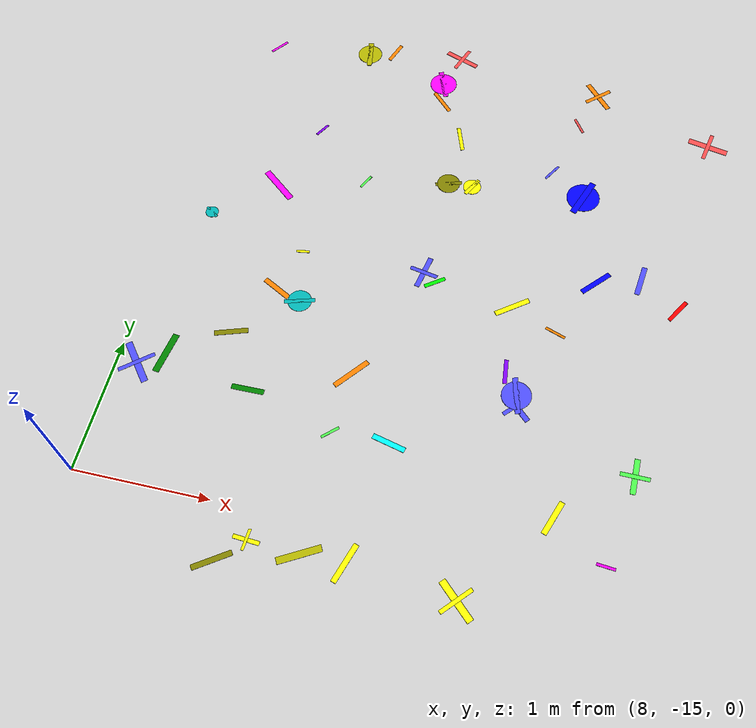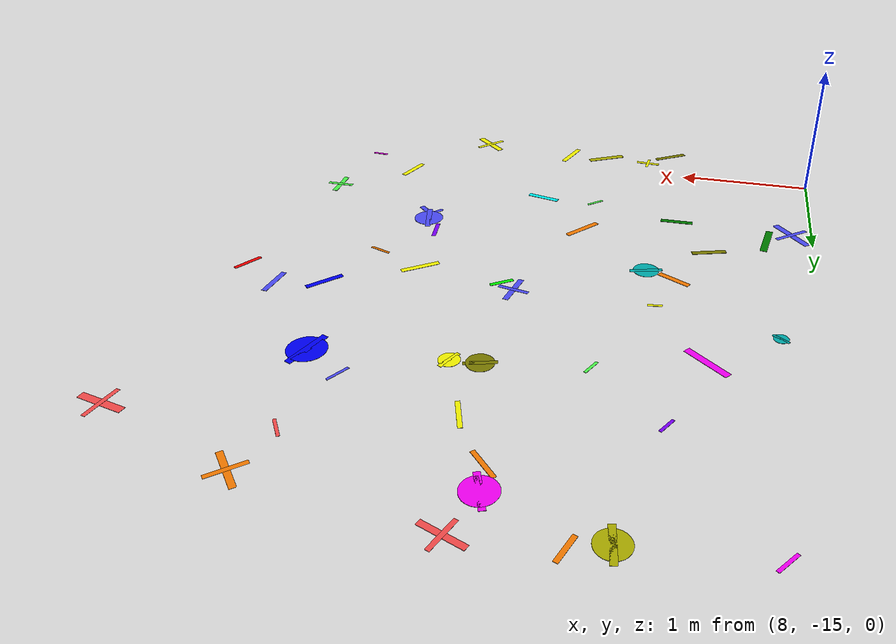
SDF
<sdf version="1.6">
 <world name="default">
  <model name="letter_H_1692">
   <static>true</static>
   <pose>8.15 -14.13 0.013 0 0 2.260</pose>
   <link name="link">
    <visual name="visual">
     <geometry><box><size>0.35 0.05 0.002</size></box></geometry>
     <material>
      <ambient>0.3 0.3 1.0 1</ambient>
      <diffuse>0.3 0.3 1.0 1</diffuse>
      <specular>0.1 0.1 0.1 1</specular>
     </material>
    </visual>
    <visual name="visual2">
     <pose>0 0 0.001 0 0 1.57</pose>
     <geometry><box><size>0.28 0.03 0.001</size></box></geometry>
     <material><ambient>0.3 0.3 1.0 1</ambient><diffuse>0.3 0.3 1.0 1</diffuse></material>
    </visual>
   </link>
  </model>
  <model name="letter_X_1694">
   <static>true</static>
   <pose>8.33 -14.01 0.005 0 0 4.555</pose>
   <link name="link">
    <visual name="visual">
     <geometry><box><size>0.32 0.05 0.002</size></box></geometry>
     <material>
      <ambient>0.0 0.5 0.0 1</ambient>
      <diffuse>0.0 0.5 0.0 1</diffuse>
      <specular>0.1 0.1 0.1 1</specular>
     </material>
    </visual>
   </link>
  </model>
  <model name="letter_G_1695">
   <static>true</static>
   <pose>8.26 -12.75 0.006 0 0 5.681</pose>
   <link name="link">
    <visual name="visual">
     <geometry><box><size>0.12 0.02 0.002</size></box></geometry>
     <material>
      <ambient>0.0 0.7 0.7 1</ambient>
      <diffuse>0.0 0.7 0.7 1</diffuse>
      <specular>0.1 0.1 0.1 1</specular>
     </material>
    </visual>
    <visual name="visual2">
     <geometry><cylinder><radius>0.05</radius><length>0.002</length></cylinder></geometry>
     <material><ambient>0.0 0.7 0.7 1</ambient><diffuse>0.0 0.7 0.7 1</diffuse></material>
    </visual>
   </link>
  </model>
  <model name="letter_V_1701">
   <static>true</static>
   <pose>8.28 -10.96 0.004 0 0 0.915</pose>
   <link name="link">
    <visual name="visual">
     <geometry><box><size>0.16 0.02 0.002</size></box></geometry>
     <material>
      <ambient>1.0 0.0 1.0 1</ambient>
      <diffuse>1.0 0.0 1.0 1</diffuse>
      <specular>0.1 0.1 0.1 1</specular>
     </material>
    </visual>
   </link>
  </model>
  <model name="letter_F_1769">
   <static>true</static>
   <pose>9.32 -15.21 0.007 0 0 3.074</pose>
   <link name="link">
    <visual name="visual">
     <geometry><box><size>0.19 0.03 0.002</size></box></geometry>
     <material>
      <ambient>1.0 1.0 0.0 1</ambient>
      <diffuse>1.0 1.0 0.0 1</diffuse>
      <specular>0.1 0.1 0.1 1</specular>
     </material>
    </visual>
    <visual name="visual2">
     <pose>0 0 0.001 0 0 1.57</pose>
     <geometry><box><size>0.15 0.02 0.001</size></box></geometry>
     <material><ambient>1.0 1.0 0.0 1</ambient><diffuse>1.0 1.0 0.0 1</diffuse></material>
    </visual>
   </link>
  </model>
  <model name="letter_B_1770">
   <static>true</static>
   <pose>9.14 -15.39 0.006 0 0 0.591</pose>
   <link name="link">
    <visual name="visual">
     <geometry><box><size>0.28 0.04 0.002</size></box></geometry>
     <material>
      <ambient>0.5 0.5 0.0 1</ambient>
      <diffuse>0.5 0.5 0.0 1</diffuse>
      <specular>0.1 0.1 0.1 1</specular>
     </material>
    </visual>
   </link>
  </model>
  <model name="letter_X_1771">
   <static>true</static>
   <pose>9.00 -14.16 0.010 0 0 3.150</pose>
   <link name="link">
    <visual name="visual">
     <geometry><box><size>0.24 0.04 0.002</size></box></geometry>
     <material>
      <ambient>0.0 0.5 0.0 1</ambient>
      <diffuse>0.0 0.5 0.0 1</diffuse>
      <specular>0.1 0.1 0.1 1</specular>
     </material>
    </visual>
   </link>
  </model>
  <model name="letter_K_1772">
   <static>true</static>
   <pose>8.74 -13.74 0.008 0 0 3.457</pose>
   <link name="link">
    <visual name="visual">
     <geometry><box><size>0.25 0.04 0.002</size></box></geometry>
     <material>
      <ambient>0.5 0.5 0.0 1</ambient>
      <diffuse>0.5 0.5 0.0 1</diffuse>
      <specular>0.1 0.1 0.1 1</specular>
     </material>
    </visual>
   </link>
  </model>
  <model name="letter_R_1773">
   <static>true</static>
   <pose>9.06 -12.95 0.007 0 0 3.277</pose>
   <link name="link">
    <visual name="visual">
     <geometry><box><size>0.10 0.02 0.002</size></box></geometry>
     <material>
      <ambient>1.0 1.0 0.0 1</ambient>
      <diffuse>1.0 1.0 0.0 1</diffuse>
      <specular>0.1 0.1 0.1 1</specular>
     </material>
    </visual>
   </link>
  </model>
  <model name="letter_Z_1774">
   <static>true</static>
   <pose>8.96 -13.31 0.004 0 0 5.794</pose>
   <link name="link">
    <visual name="visual">
     <geometry><box><size>0.24 0.04 0.002</size></box></geometry>
     <material>
      <ambient>1.0 0.5 0.0 1</ambient>
      <diffuse>1.0 0.5 0.0 1</diffuse>
      <specular>0.1 0.1 0.1 1</specular>
     </material>
    </visual>
   </link>
  </model>
  <model name="letter_C_1775">
   <static>true</static>
   <pose>9.16 -13.38 0.011 0 0 3.416</pose>
   <link name="link">
    <visual name="visual">
     <geometry><box><size>0.23 0.03 0.002</size></box></geometry>
     <material>
      <ambient>0.0 0.7 0.7 1</ambient>
      <diffuse>0.0 0.7 0.7 1</diffuse>
      <specular>0.1 0.1 0.1 1</specular>
     </material>
    </visual>
    <visual name="visual2">
     <geometry><cylinder><radius>0.09</radius><length>0.002</length></cylinder></geometry>
     <material><ambient>0.0 0.7 0.7 1</ambient><diffuse>0.0 0.7 0.7 1</diffuse></material>
    </visual>
   </link>
  </model>
  <model name="letter_B_1776">
   <static>true</static>
   <pose>9.37 -12.20 0.003 0 0 1.118</pose>
   <link name="link">
    <visual name="visual">
     <geometry><box><size>0.13 0.02 0.002</size></box></geometry>
     <material>
      <ambient>0.3 1.0 0.3 1</ambient>
      <diffuse>0.3 1.0 0.3 1</diffuse>
      <specular>0.1 0.1 0.1 1</specular>
     </material>
    </visual>
   </link>
  </model>
  <model name="letter_V_1777">
   <static>true</static>
   <pose>8.89 -11.77 0.009 0 0 4.189</pose>
   <link name="link">
    <visual name="visual">
     <geometry><box><size>0.13 0.02 0.002</size></box></geometry>
     <material>
      <ambient>0.5 0.0 1.0 1</ambient>
      <diffuse>0.5 0.0 1.0 1</diffuse>
      <specular>0.1 0.1 0.1 1</specular>
     </material>
    </visual>
   </link>
  </model>
  <model name="letter_P_1778">
   <static>true</static>
   <pose>8.70 -12.39 0.012 0 0 5.597</pose>
   <link name="link">
    <visual name="visual">
     <geometry><box><size>0.33 0.05 0.002</size></box></geometry>
     <material>
      <ambient>1.0 0.0 1.0 1</ambient>
      <diffuse>1.0 0.0 1.0 1</diffuse>
      <specular>0.1 0.1 0.1 1</specular>
     </material>
    </visual>
   </link>
  </model>
  <model name="letter_S_1779">
   <static>true</static>
   <pose>9.28 -10.81 0.006 0 0 1.231</pose>
   <link name="link">
    <visual name="visual">
     <geometry><box><size>0.19 0.03 0.002</size></box></geometry>
     <material>
      <ambient>1.0 0.5 0.0 1</ambient>
      <diffuse>1.0 0.5 0.0 1</diffuse>
      <specular>0.1 0.1 0.1 1</specular>
     </material>
    </visual>
   </link>
  </model>
  <model name="letter_C_1780">
   <static>true</static>
   <pose>9.07 -10.88 0.011 0 0 4.883</pose>
   <link name="link">
    <visual name="visual">
     <geometry><box><size>0.25 0.04 0.002</size></box></geometry>
     <material>
      <ambient>0.7 0.7 0.0 1</ambient>
      <diffuse>0.7 0.7 0.0 1</diffuse>
      <specular>0.1 0.1 0.1 1</specular>
     </material>
    </visual>
    <visual name="visual2">
     <geometry><cylinder><radius>0.10</radius><length>0.002</length></cylinder></geometry>
     <material><ambient>0.7 0.7 0.0 1</ambient><diffuse>0.7 0.7 0.0 1</diffuse></material>
    </visual>
   </link>
  </model>
  <model name="letter_J_1852">
   <static>true</static>
   <pose>10.00 -15.22 0.011 0 0 1.262</pose>
   <link name="link">
    <visual name="visual">
     <geometry><box><size>0.29 0.04 0.002</size></box></geometry>
     <material>
      <ambient>1.0 1.0 0.0 1</ambient>
      <diffuse>1.0 1.0 0.0 1</diffuse>
      <specular>0.1 0.1 0.1 1</specular>
     </material>
    </visual>
   </link>
  </model>
  <model name="letter_U_1853">
   <static>true</static>
   <pose>9.69 -15.23 0.009 0 0 0.508</pose>
   <link name="link">
    <visual name="visual">
     <geometry><box><size>0.31 0.05 0.002</size></box></geometry>
     <material>
      <ambient>0.7 0.7 0.0 1</ambient>
      <diffuse>0.7 0.7 0.0 1</diffuse>
      <specular>0.1 0.1 0.1 1</specular>
     </material>
    </visual>
   </link>
  </model>
  <model name="letter_M_1854">
   <static>true</static>
   <pose>9.66 -14.35 0.006 0 0 3.883</pose>
   <link name="link">
    <visual name="visual">
     <geometry><box><size>0.14 0.02 0.002</size></box></geometry>
     <material>
      <ambient>0.3 1.0 0.3 1</ambient>
      <diffuse>0.3 1.0 0.3 1</diffuse>
      <specular>0.1 0.1 0.1 1</specular>
     </material>
    </visual>
   </link>
  </model>
  <model name="letter_M_1855">
   <static>true</static>
   <pose>9.69 -13.88 0.010 0 0 0.891</pose>
   <link name="link">
    <visual name="visual">
     <geometry><box><size>0.30 0.04 0.002</size></box></geometry>
     <material>
      <ambient>1.0 0.5 0.0 1</ambient>
      <diffuse>1.0 0.5 0.0 1</diffuse>
      <specular>0.1 0.1 0.1 1</specular>
     </material>
    </visual>
   </link>
  </model>
  <model name="letter_X_1856">
   <static>true</static>
   <pose>10.08 -14.34 0.010 0 0 2.907</pose>
   <link name="link">
    <visual name="visual">
     <geometry><box><size>0.25 0.04 0.002</size></box></geometry>
     <material>
      <ambient>0.0 1.0 1.0 1</ambient>
      <diffuse>0.0 1.0 1.0 1</diffuse>
      <specular>0.1 0.1 0.1 1</specular>
     </material>
    </visual>
   </link>
  </model>
  <model name="letter_R_1857">
   <static>true</static>
   <pose>10.11 -13.00 0.007 0 0 3.759</pose>
   <link name="link">
    <visual name="visual">
     <geometry><box><size>0.17 0.03 0.002</size></box></geometry>
     <material>
      <ambient>0.0 1.0 0.0 1</ambient>
      <diffuse>0.0 1.0 0.0 1</diffuse>
      <specular>0.1 0.1 0.1 1</specular>
     </material>
    </visual>
   </link>
  </model>
  <model name="letter_F_1858">
   <static>true</static>
   <pose>10.01 -12.93 0.007 0 0 4.518</pose>
   <link name="link">
    <visual name="visual">
     <geometry><box><size>0.27 0.04 0.002</size></box></geometry>
     <material>
      <ambient>0.3 0.3 1.0 1</ambient>
      <diffuse>0.3 0.3 1.0 1</diffuse>
      <specular>0.1 0.1 0.1 1</specular>
     </material>
    </visual>
    <visual name="visual2">
     <pose>0 0 0.001 0 0 1.57</pose>
     <geometry><box><size>0.22 0.03 0.001</size></box></geometry>
     <material><ambient>0.3 0.3 1.0 1</ambient><diffuse>0.3 0.3 1.0 1</diffuse></material>
    </visual>
   </link>
  </model>
  <model name="letter_Q_1859">
   <static>true</static>
   <pose>10.02 -12.08 0.013 0 0 3.423</pose>
   <link name="link">
    <visual name="visual">
     <geometry><box><size>0.21 0.03 0.002</size></box></geometry>
     <material>
      <ambient>0.5 0.5 0.0 1</ambient>
      <diffuse>0.5 0.5 0.0 1</diffuse>
      <specular>0.1 0.1 0.1 1</specular>
     </material>
    </visual>
    <visual name="visual2">
     <geometry><cylinder><radius>0.09</radius><length>0.002</length></cylinder></geometry>
     <material><ambient>0.5 0.5 0.0 1</ambient><diffuse>0.5 0.5 0.0 1</diffuse></material>
    </visual>
   </link>
  </model>
  <model name="letter_B_1860">
   <static>true</static>
   <pose>10.02 -11.61 0.004 0 0 1.912</pose>
   <link name="link">
    <visual name="visual">
     <geometry><box><size>0.23 0.03 0.002</size></box></geometry>
     <material>
      <ambient>1.0 1.0 0.0 1</ambient>
      <diffuse>1.0 1.0 0.0 1</diffuse>
      <specular>0.1 0.1 0.1 1</specular>
     </material>
    </visual>
   </link>
  </model>
  <model name="letter_G_1861">
   <static>true</static>
   <pose>10.21 -12.07 0.010 0 0 1.081</pose>
   <link name="link">
    <visual name="visual">
     <geometry><box><size>0.17 0.03 0.002</size></box></geometry>
     <material>
      <ambient>1.0 1.0 0.0 1</ambient>
      <diffuse>1.0 1.0 0.0 1</diffuse>
      <specular>0.1 0.1 0.1 1</specular>
     </material>
    </visual>
    <visual name="visual2">
     <geometry><cylinder><radius>0.07</radius><length>0.002</length></cylinder></geometry>
     <material><ambient>1.0 1.0 0.0 1</ambient><diffuse>1.0 1.0 0.0 1</diffuse></material>
    </visual>
   </link>
  </model>
  <model name="letter_F_1862">
   <static>true</static>
   <pose>9.86 -10.76 0.006 0 0 2.783</pose>
   <link name="link">
    <visual name="visual">
     <geometry><box><size>0.29 0.04 0.002</size></box></geometry>
     <material>
      <ambient>1.0 0.3 0.3 1</ambient>
      <diffuse>1.0 0.3 0.3 1</diffuse>
      <specular>0.1 0.1 0.1 1</specular>
     </material>
    </visual>
    <visual name="visual2">
     <pose>0 0 0.001 0 0 1.57</pose>
     <geometry><box><size>0.23 0.03 0.001</size></box></geometry>
     <material><ambient>1.0 0.3 0.3 1</ambient><diffuse>1.0 0.3 0.3 1</diffuse></material>
    </visual>
   </link>
  </model>
  <model name="letter_Q_1863">
   <static>true</static>
   <pose>9.76 -11.07 0.009 0 0 1.932</pose>
   <link name="link">
    <visual name="visual">
     <geometry><box><size>0.27 0.04 0.002</size></box></geometry>
     <material>
      <ambient>1.0 0.0 1.0 1</ambient>
      <diffuse>1.0 0.0 1.0 1</diffuse>
      <specular>0.1 0.1 0.1 1</specular>
     </material>
    </visual>
    <visual name="visual2">
     <geometry><cylinder><radius>0.11</radius><length>0.002</length></cylinder></geometry>
     <material><ambient>1.0 0.0 1.0 1</ambient><diffuse>1.0 0.0 1.0 1</diffuse></material>
    </visual>
   </link>
  </model>
  <model name="letter_X_1864">
   <static>true</static>
   <pose>9.79 -11.26 0.006 0 0 2.340</pose>
   <link name="link">
    <visual name="visual">
     <geometry><box><size>0.23 0.03 0.002</size></box></geometry>
     <material>
      <ambient>1.0 0.5 0.0 1</ambient>
      <diffuse>1.0 0.5 0.0 1</diffuse>
      <specular>0.1 0.1 0.1 1</specular>
     </material>
    </visual>
   </link>
  </model>
  <model name="letter_N_1931">
   <static>true</static>
   <pose>11.28 -14.62 0.008 0 0 4.366</pose>
   <link name="link">
    <visual name="visual">
     <geometry><box><size>0.26 0.04 0.002</size></box></geometry>
     <material>
      <ambient>1.0 1.0 0.0 1</ambient>
      <diffuse>1.0 1.0 0.0 1</diffuse>
      <specular>0.1 0.1 0.1 1</specular>
     </material>
    </visual>
   </link>
  </model>
  <model name="letter_A_1932">
   <static>true</static>
   <pose>10.76 -15.30 0.010 0 0 5.537</pose>
   <link name="link">
    <visual name="visual">
     <geometry><box><size>0.32 0.05 0.002</size></box></geometry>
     <material>
      <ambient>1.0 1.0 0.0 1</ambient>
      <diffuse>1.0 1.0 0.0 1</diffuse>
      <specular>0.1 0.1 0.1 1</specular>
     </material>
    </visual>
    <visual name="visual2">
     <pose>0 0 0.001 0 0 1.57</pose>
     <geometry><box><size>0.26 0.03 0.001</size></box></geometry>
     <material><ambient>1.0 1.0 0.0 1</ambient><diffuse>1.0 1.0 0.0 1</diffuse></material>
    </visual>
   </link>
  </model>
  <model name="letter_T_1933">
   <static>true</static>
   <pose>10.89 -13.87 0.007 0 0 2.392</pose>
   <link name="link">
    <visual name="visual">
     <geometry><box><size>0.28 0.04 0.002</size></box></geometry>
     <material>
      <ambient>0.3 0.3 1.0 1</ambient>
      <diffuse>0.3 0.3 1.0 1</diffuse>
      <specular>0.1 0.1 0.1 1</specular>
     </material>
    </visual>
    <visual name="visual2">
     <pose>0 0 0.001 0 0 1.57</pose>
     <geometry><box><size>0.22 0.03 0.001</size></box></geometry>
     <material><ambient>0.3 0.3 1.0 1</ambient><diffuse>0.3 0.3 1.0 1</diffuse></material>
    </visual>
   </link>
  </model>
  <model name="letter_Q_1934">
   <static>true</static>
   <pose>10.88 -13.79 0.010 0 0 4.954</pose>
   <link name="link">
    <visual name="visual">
     <geometry><box><size>0.28 0.04 0.002</size></box></geometry>
     <material>
      <ambient>0.3 0.3 1.0 1</ambient>
      <diffuse>0.3 0.3 1.0 1</diffuse>
      <specular>0.1 0.1 0.1 1</specular>
     </material>
    </visual>
    <visual name="visual2">
     <geometry><cylinder><radius>0.11</radius><length>0.002</length></cylinder></geometry>
     <material><ambient>0.3 0.3 1.0 1</ambient><diffuse>0.3 0.3 1.0 1</diffuse></material>
    </visual>
   </link>
  </model>
  <model name="letter_B_1935">
   <static>true</static>
   <pose>10.77 -13.62 0.008 0 0 1.682</pose>
   <link name="link">
    <visual name="visual">
     <geometry><box><size>0.19 0.03 0.002</size></box></geometry>
     <material>
      <ambient>0.5 0.0 1.0 1</ambient>
      <diffuse>0.5 0.0 1.0 1</diffuse>
      <specular>0.1 0.1 0.1 1</specular>
     </material>
    </visual>
   </link>
  </model>
  <model name="letter_M_1936">
   <static>true</static>
   <pose>11.30 -12.74 0.007 0 0 0.824</pose>
   <link name="link">
    <visual name="visual">
     <geometry><box><size>0.27 0.04 0.002</size></box></geometry>
     <material>
      <ambient>0.0 0.0 1.0 1</ambient>
      <diffuse>0.0 0.0 1.0 1</diffuse>
      <specular>0.1 0.1 0.1 1</specular>
     </material>
    </visual>
   </link>
  </model>
  <model name="letter_N_1937">
   <static>true</static>
   <pose>10.72 -13.08 0.003 0 0 3.776</pose>
   <link name="link">
    <visual name="visual">
     <geometry><box><size>0.28 0.04 0.002</size></box></geometry>
     <material>
      <ambient>1.0 1.0 0.0 1</ambient>
      <diffuse>1.0 1.0 0.0 1</diffuse>
      <specular>0.1 0.1 0.1 1</specular>
     </material>
    </visual>
   </link>
  </model>
  <model name="letter_X_1938">
   <static>true</static>
   <pose>11.07 -13.23 0.011 0 0 5.940</pose>
   <link name="link">
    <visual name="visual">
     <geometry><box><size>0.16 0.02 0.002</size></box></geometry>
     <material>
      <ambient>1.0 0.5 0.0 1</ambient>
      <diffuse>1.0 0.5 0.0 1</diffuse>
      <specular>0.1 0.1 0.1 1</specular>
     </material>
    </visual>
   </link>
  </model>
  <model name="letter_N_1939">
   <static>true</static>
   <pose>10.81 -11.79 0.012 0 0 4.166</pose>
   <link name="link">
    <visual name="visual">
     <geometry><box><size>0.16 0.02 0.002</size></box></geometry>
     <material>
      <ambient>0.3 0.3 1.0 1</ambient>
      <diffuse>0.3 0.3 1.0 1</diffuse>
      <specular>0.1 0.1 0.1 1</specular>
     </material>
    </visual>
   </link>
  </model>
  <model name="letter_Q_1940">
   <static>true</static>
   <pose>11.09 -11.98 0.008 0 0 1.212</pose>
   <link name="link">
    <visual name="visual">
     <geometry><box><size>0.33 0.05 0.002</size></box></geometry>
     <material>
      <ambient>0.0 0.0 1.0 1</ambient>
      <diffuse>0.0 0.0 1.0 1</diffuse>
      <specular>0.1 0.1 0.1 1</specular>
     </material>
    </visual>
    <visual name="visual2">
     <geometry><cylinder><radius>0.13</radius><length>0.002</length></cylinder></geometry>
     <material><ambient>0.0 0.0 1.0 1</ambient><diffuse>0.0 0.0 1.0 1</diffuse></material>
    </visual>
   </link>
  </model>
  <model name="letter_L_1941">
   <static>true</static>
   <pose>11.06 -10.92 0.009 0 0 5.436</pose>
   <link name="link">
    <visual name="visual">
     <geometry><box><size>0.30 0.04 0.002</size></box></geometry>
     <material>
      <ambient>1.0 0.5 0.0 1</ambient>
      <diffuse>1.0 0.5 0.0 1</diffuse>
      <specular>0.1 0.1 0.1 1</specular>
     </material>
    </visual>
    <visual name="visual2">
     <pose>0 0 0.001 0 0 1.57</pose>
     <geometry><box><size>0.24 0.03 0.001</size></box></geometry>
     <material><ambient>1.0 0.5 0.0 1</ambient><diffuse>1.0 0.5 0.0 1</diffuse></material>
    </visual>
   </link>
  </model>
  <model name="letter_P_1942">
   <static>true</static>
   <pose>10.95 -11.27 0.013 0 0 2.161</pose>
   <link name="link">
    <visual name="visual">
     <geometry><box><size>0.15 0.02 0.002</size></box></geometry>
     <material>
      <ambient>1.0 0.3 0.3 1</ambient>
      <diffuse>1.0 0.3 0.3 1</diffuse>
      <specular>0.1 0.1 0.1 1</specular>
     </material>
    </visual>
   </link>
  </model>
  <model name="letter_W_2007">
   <static>true</static>
   <pose>11.67 -14.87 0.012 0 0 3.050</pose>
   <link name="link">
    <visual name="visual">
     <geometry><box><size>0.13 0.02 0.002</size></box></geometry>
     <material>
      <ambient>1.0 0.0 1.0 1</ambient>
      <diffuse>1.0 0.0 1.0 1</diffuse>
      <specular>0.1 0.1 0.1 1</specular>
     </material>
    </visual>
   </link>
  </model>
  <model name="letter_A_2009">
   <static>true</static>
   <pose>11.78 -14.21 0.008 0 0 4.700</pose>
   <link name="link">
    <visual name="visual">
     <geometry><box><size>0.26 0.04 0.002</size></box></geometry>
     <material>
      <ambient>0.3 1.0 0.3 1</ambient>
      <diffuse>0.3 1.0 0.3 1</diffuse>
      <specular>0.1 0.1 0.1 1</specular>
     </material>
    </visual>
    <visual name="visual2">
     <pose>0 0 0.001 0 0 1.57</pose>
     <geometry><box><size>0.21 0.03 0.001</size></box></geometry>
     <material><ambient>0.3 1.0 0.3 1</ambient><diffuse>0.3 1.0 0.3 1</diffuse></material>
    </visual>
   </link>
  </model>
  <model name="letter_J_2011">
   <static>true</static>
   <pose>11.63 -12.65 0.012 0 0 4.587</pose>
   <link name="link">
    <visual name="visual">
     <geometry><box><size>0.25 0.04 0.002</size></box></geometry>
     <material>
      <ambient>0.3 0.3 1.0 1</ambient>
      <diffuse>0.3 0.3 1.0 1</diffuse>
      <specular>0.1 0.1 0.1 1</specular>
     </material>
    </visual>
   </link>
  </model>
  <model name="letter_U_2012">
   <static>true</static>
   <pose>11.93 -12.85 0.008 0 0 1.016</pose>
   <link name="link">
    <visual name="visual">
     <geometry><box><size>0.21 0.03 0.002</size></box></geometry>
     <material>
      <ambient>1.0 0.0 0.0 1</ambient>
      <diffuse>1.0 0.0 0.0 1</diffuse>
      <specular>0.1 0.1 0.1 1</specular>
     </material>
    </visual>
   </link>
  </model>
  <model name="letter_T_2015">
   <static>true</static>
   <pose>12.01 -11.25 0.004 0 0 2.935</pose>
   <link name="link">
    <visual name="visual">
     <geometry><box><size>0.32 0.05 0.002</size></box></geometry>
     <material>
      <ambient>1.0 0.3 0.3 1</ambient>
      <diffuse>1.0 0.3 0.3 1</diffuse>
      <specular>0.1 0.1 0.1 1</specular>
     </material>
    </visual>
    <visual name="visual2">
     <pose>0 0 0.001 0 0 1.57</pose>
     <geometry><box><size>0.26 0.03 0.001</size></box></geometry>
     <material><ambient>1.0 0.3 0.3 1</ambient><diffuse>1.0 0.3 0.3 1</diffuse></material>
    </visual>
   </link>
  </model>
 </world>
</sdf>
